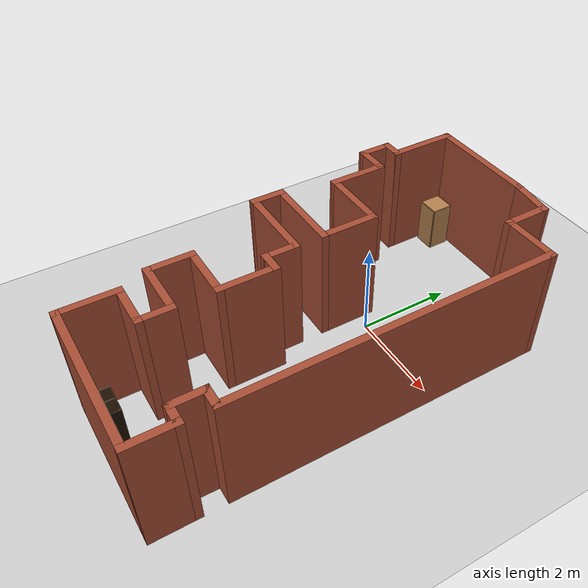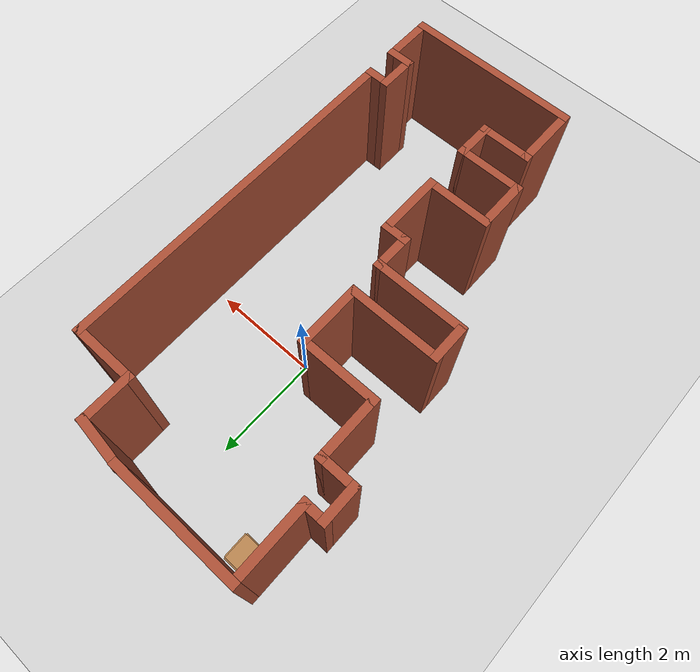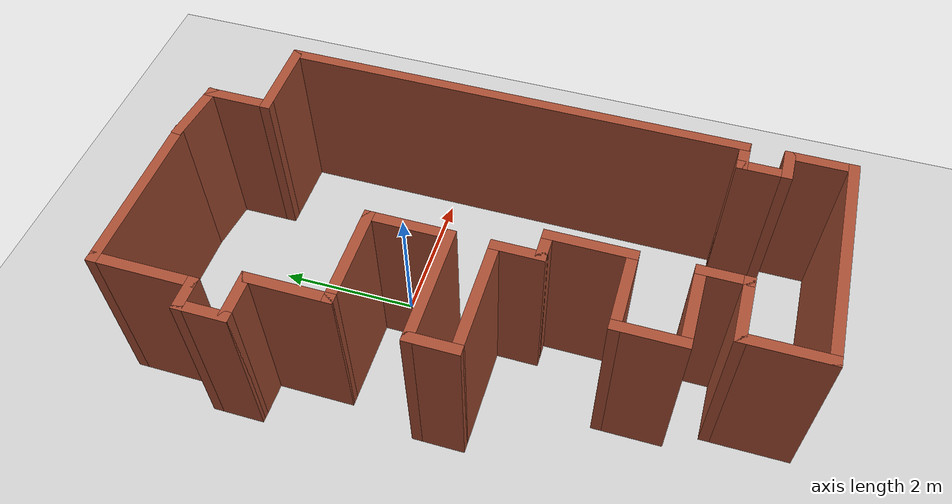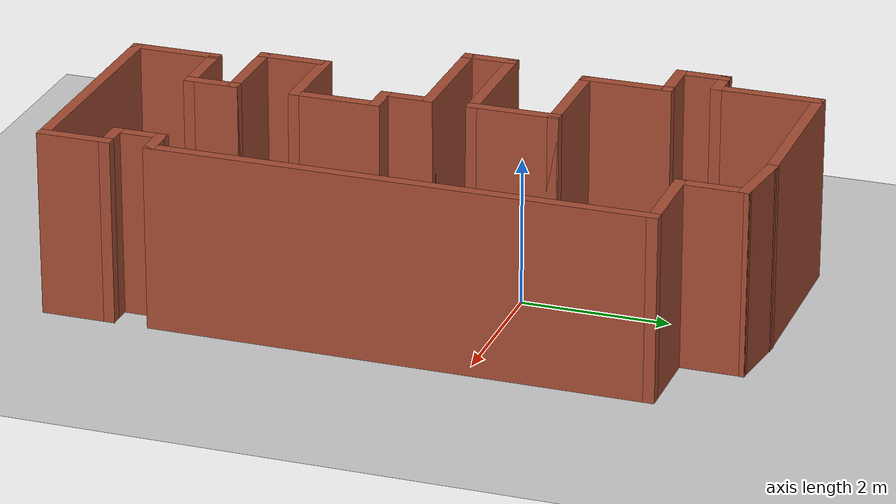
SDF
<sdf version="1.6">
 <world name="default">
  <light name="sun" type="directional">
   <pose>0 0 10 0 -0 0</pose>
   <diffuse>0.8 0.8 0.8 1</diffuse>
   <specular>0.2 0.2 0.2 1</specular>
   <attenuation>
    <range>1000</range>
    <constant>0.9</constant>
    <linear>0.01</linear>
    <quadratic>0.001</quadratic>
   </attenuation>
   <direction>-0.5 0.1 -0.9</direction>
  </light>
  <model name="ground_plane">
   <static>1</static>
   <link name="link">
    <collision name="collision">
     <geometry><plane><normal>0 0 1</normal><size>100 100</size></plane></geometry>
     <surface>
      <contact><collide_bitmask>65535</collide_bitmask></contact>
      <friction><ode><mu>100</mu><mu2>50</mu2></ode></friction>
     </surface>
    </collision>
    <visual name="visual">
     <cast_shadows>0</cast_shadows>
     <geometry><plane><normal>0 0 1</normal><size>100 100</size></plane></geometry>
     <material>
      <script><uri>file://media/materials/scripts/gazebo.material</uri><name>Gazebo/Grey</name></script>
     </material>
    </visual>
   </link>
  </model>
  <gravity>0 0 -9.8</gravity>
  <magnetic_field>6e-06 2.3e-05 -4.2e-05</magnetic_field>
  <atmosphere type="adiabatic"/>
  <physics name="default_physics" default="0" type="ode">
   <max_step_size>0.001</max_step_size>
   <real_time_factor>1</real_time_factor>
   <real_time_update_rate>1000</real_time_update_rate>
  </physics>
  <scene><ambient>0.4 0.4 0.4 1</ambient><background>0.7 0.7 0.7 1</background><shadows>1</shadows></scene>
  <audio><device>default</device></audio>
  <spherical_coordinates>
   <surface_model>EARTH_WGS84</surface_model>
   <latitude_deg>0</latitude_deg>
   <longitude_deg>0</longitude_deg>
   <elevation>0</elevation>
   <heading_deg>0</heading_deg>
  </spherical_coordinates>
  <model name="map_68">
   <pose>-0.058213 -1.14192 0 0 -0 0</pose>
   <link name="Wall_10">
    <collision name="Wall_10_Collision">
     <geometry><box><size>1.5 0.15 2.5</size></box></geometry>
     <pose>0 0 1.25 0 -0 0</pose>
    </collision>
    <visual name="Wall_10_Visual">
     <pose>0 0 1.25 0 -0 0</pose>
     <geometry><box><size>1.5 0.15 2.5</size></box></geometry>
     <material>
      <script><uri>file://media/materials/scripts/gazebo.material</uri><name>Gazebo/Bricks</name></script>
      <ambient>1 1 1 1</ambient>
     </material>
     <meta><layer>0</layer></meta>
    </visual>
    <pose>-1 1.44569 0 0 -0 0</pose>
   </link>
   <link name="Wall_11">
    <collision name="Wall_11_Collision">
     <geometry><box><size>1.25 0.15 2.5</size></box></geometry>
     <pose>0 0 1.25 0 -0 0</pose>
    </collision>
    <visual name="Wall_11_Visual">
     <pose>0 0 1.25 0 -0 0</pose>
     <geometry><box><size>1.25 0.15 2.5</size></box></geometry>
     <material>
      <script><uri>file://media/materials/scripts/gazebo.material</uri><name>Gazebo/Bricks</name></script>
      <ambient>1 1 1 1</ambient>
     </material>
     <meta><layer>0</layer></meta>
    </visual>
    <pose>-0.325 0.895693 0 0 -0 -1.5708</pose>
   </link>
   <link name="Wall_12">
    <collision name="Wall_12_Collision">
     <geometry><box><size>1.75 0.15 2.5</size></box></geometry>
     <pose>0 0 1.25 0 -0 0</pose>
    </collision>
    <visual name="Wall_12_Visual">
     <pose>0 0 1.25 0 -0 0</pose>
     <geometry><box><size>1.75 0.15 2.5</size></box></geometry>
     <material>
      <script><uri>file://media/materials/scripts/gazebo.material</uri><name>Gazebo/Bricks</name></script>
      <ambient>1 1 1 1</ambient>
     </material>
     <meta><layer>0</layer></meta>
    </visual>
    <pose>-1.125 0.345693 0 0 -0 3.14159</pose>
   </link>
   <link name="Wall_13">
    <collision name="Wall_13_Collision">
     <geometry><box><size>0.75 0.15 2.5</size></box></geometry>
     <pose>0 0 1.25 0 -0 0</pose>
    </collision>
    <visual name="Wall_13_Visual">
     <pose>0 0 1.25 0 -0 0</pose>
     <geometry><box><size>0.75 0.15 2.5</size></box></geometry>
     <material>
      <script><uri>file://media/materials/scripts/gazebo.material</uri><name>Gazebo/Bricks</name></script>
      <ambient>1 1 1 1</ambient>
     </material>
     <meta><layer>0</layer></meta>
    </visual>
    <pose>-1.925 0.045693 0 0 -0 -1.5708</pose>
   </link>
   <link name="Wall_14">
    <collision name="Wall_14_Collision">
     <geometry><box><size>1.75 0.15 2.5</size></box></geometry>
     <pose>0 0 1.25 0 -0 0</pose>
    </collision>
    <visual name="Wall_14_Visual">
     <pose>0 0 1.25 0 -0 0</pose>
     <geometry><box><size>1.75 0.15 2.5</size></box></geometry>
     <material>
      <script><uri>file://media/materials/scripts/gazebo.material</uri><name>Gazebo/Bricks</name></script>
      <ambient>1 1 1 1</ambient>
     </material>
     <meta><layer>0</layer></meta>
    </visual>
    <pose>-1.125 -0.254307 0 0 -0 0</pose>
   </link>
   <link name="Wall_15">
    <collision name="Wall_15_Collision">
     <geometry><box><size>0.75 0.15 2.5</size></box></geometry>
     <pose>0 0 1.25 0 -0 0</pose>
    </collision>
    <visual name="Wall_15_Visual">
     <pose>0 0 1.25 0 -0 0</pose>
     <geometry><box><size>0.75 0.15 2.5</size></box></geometry>
     <material>
      <script><uri>file://media/materials/scripts/gazebo.material</uri><name>Gazebo/Bricks</name></script>
      <ambient>1 1 1 1</ambient>
     </material>
     <meta><layer>0</layer></meta>
    </visual>
    <pose>-0.325 -0.554307 0 0 -0 -1.5708</pose>
   </link>
   <link name="Wall_16">
    <collision name="Wall_16_Collision">
     <geometry><box><size>0.5 0.15 2.5</size></box></geometry>
     <pose>0 0 1.25 0 -0 0</pose>
    </collision>
    <visual name="Wall_16_Visual">
     <pose>0 0 1.25 0 -0 0</pose>
     <geometry><box><size>0.5 0.15 2.5</size></box></geometry>
     <material>
      <script><uri>file://media/materials/scripts/gazebo.material</uri><name>Gazebo/Bricks</name></script>
      <ambient>1 1 1 1</ambient>
     </material>
     <meta><layer>0</layer></meta>
    </visual>
    <pose>-0.15 -0.854307 0 0 -0 0</pose>
   </link>
   <link name="Wall_17">
    <collision name="Wall_17_Collision">
     <geometry><box><size>1.25 0.15 2.5</size></box></geometry>
     <pose>0 0 1.25 0 -0 0</pose>
    </collision>
    <visual name="Wall_17_Visual">
     <pose>0 0 1.25 0 -0 0</pose>
     <geometry><box><size>1.25 0.15 2.5</size></box></geometry>
     <material>
      <script><uri>file://media/materials/scripts/gazebo.material</uri><name>Gazebo/Bricks</name></script>
      <ambient>1 1 1 1</ambient>
     </material>
     <meta><layer>0</layer></meta>
    </visual>
    <pose>0.025 -1.40431 0 0 -0 -1.5708</pose>
   </link>
   <link name="Wall_18">
    <collision name="Wall_18_Collision">
     <geometry><box><size>1.25 0.15 2.5</size></box></geometry>
     <pose>0 0 1.25 0 -0 0</pose>
    </collision>
    <visual name="Wall_18_Visual">
     <pose>0 0 1.25 0 -0 0</pose>
     <geometry><box><size>1.25 0.15 2.5</size></box></geometry>
     <material>
      <script><uri>file://media/materials/scripts/gazebo.material</uri><name>Gazebo/Bricks</name></script>
      <ambient>1 1 1 1</ambient>
     </material>
     <meta><layer>0</layer></meta>
    </visual>
    <pose>-0.525 -1.95431 0 0 -0 3.14159</pose>
   </link>
   <link name="Wall_19">
    <collision name="Wall_19_Collision">
     <geometry><box><size>1 0.15 2.5</size></box></geometry>
     <pose>0 0 1.25 0 -0 0</pose>
    </collision>
    <visual name="Wall_19_Visual">
     <pose>0 0 1.25 0 -0 0</pose>
     <geometry><box><size>1 0.15 2.5</size></box></geometry>
     <material>
      <script><uri>file://media/materials/scripts/gazebo.material</uri><name>Gazebo/Bricks</name></script>
      <ambient>1 1 1 1</ambient>
     </material>
     <meta><layer>0</layer></meta>
    </visual>
    <pose>-1.075 -2.37931 0 0 -0 -1.5708</pose>
   </link>
   <link name="Wall_2">
    <collision name="Wall_2_Collision">
     <geometry><box><size>2.43882 0.15 2.5</size></box></geometry>
     <pose>0 0 1.25 0 -0 0</pose>
    </collision>
    <visual name="Wall_2_Visual">
     <pose>0 0 1.25 0 -0 0</pose>
     <geometry><box><size>2.43882 0.15 2.5</size></box></geometry>
     <material>
      <script><uri>file://media/materials/scripts/gazebo.material</uri><name>Gazebo/Bricks</name></script>
      <ambient>1 1 1 1</ambient>
     </material>
     <meta><layer>0</layer></meta>
    </visual>
    <pose>-0.78059 4.49569 0 0 -0 3.14159</pose>
   </link>
   <link name="Wall_20">
    <collision name="Wall_20_Collision">
     <geometry><box><size>1.25 0.15 2.5</size></box></geometry>
     <pose>0 0 1.25 0 -0 0</pose>
    </collision>
    <visual name="Wall_20_Visual">
     <pose>0 0 1.25 0 -0 0</pose>
     <geometry><box><size>1.25 0.15 2.5</size></box></geometry>
     <material>
      <script><uri>file://media/materials/scripts/gazebo.material</uri><name>Gazebo/Bricks</name></script>
      <ambient>1 1 1 1</ambient>
     </material>
     <meta><layer>0</layer></meta>
    </visual>
    <pose>-0.525 -2.80431 0 0 -0 0</pose>
   </link>
   <link name="Wall_21">
    <collision name="Wall_21_Collision">
     <geometry><box><size>0.75 0.15 2.5</size></box></geometry>
     <pose>0 0 1.25 0 -0 0</pose>
    </collision>
    <visual name="Wall_21_Visual">
     <pose>0 0 1.25 0 -0 0</pose>
     <geometry><box><size>0.75 0.15 2.5</size></box></geometry>
     <material>
      <script><uri>file://media/materials/scripts/gazebo.material</uri><name>Gazebo/Bricks</name></script>
      <ambient>1 1 1 1</ambient>
     </material>
     <meta><layer>0</layer></meta>
    </visual>
    <pose>0.025 -3.10431 0 0 -0 -1.5708</pose>
   </link>
   <link name="Wall_22">
    <collision name="Wall_22_Collision">
     <geometry><box><size>1 0.15 2.5</size></box></geometry>
     <pose>0 0 1.25 0 -0 0</pose>
    </collision>
    <visual name="Wall_22_Visual">
     <pose>0 0 1.25 0 -0 0</pose>
     <geometry><box><size>1 0.15 2.5</size></box></geometry>
     <material>
      <script><uri>file://media/materials/scripts/gazebo.material</uri><name>Gazebo/Bricks</name></script>
      <ambient>1 1 1 1</ambient>
     </material>
     <meta><layer>0</layer></meta>
    </visual>
    <pose>-0.4 -3.40431 0 0 -0 3.14159</pose>
   </link>
   <link name="Wall_23">
    <collision name="Wall_23_Collision">
     <geometry><box><size>1.25 0.15 2.5</size></box></geometry>
     <pose>0 0 1.25 0 -0 0</pose>
    </collision>
    <visual name="Wall_23_Visual">
     <pose>0 0 1.25 0 -0 0</pose>
     <geometry><box><size>1.25 0.15 2.5</size></box></geometry>
     <material>
      <script><uri>file://media/materials/scripts/gazebo.material</uri><name>Gazebo/Bricks</name></script>
      <ambient>1 1 1 1</ambient>
     </material>
     <meta><layer>0</layer></meta>
    </visual>
    <pose>-0.825 -3.95431 0 0 -0 -1.5708</pose>
   </link>
   <link name="Wall_3">
    <collision name="Wall_3_Collision">
     <geometry><box><size>1.5 0.15 2.5</size></box></geometry>
     <pose>0 0 1.25 0 -0 0</pose>
    </collision>
    <visual name="Wall_3_Visual">
     <pose>0 0 1.25 0 -0 0</pose>
     <geometry><box><size>1.5 0.15 2.5</size></box></geometry>
     <material>
      <script><uri>file://media/materials/scripts/gazebo.material</uri><name>Gazebo/Bricks</name></script>
      <ambient>1 1 1 1</ambient>
     </material>
     <meta><layer>0</layer></meta>
    </visual>
    <pose>-1.925 3.82069 0 0 -0 -1.5708</pose>
   </link>
   <link name="Wall_4">
    <collision name="Wall_4_Collision">
     <geometry><box><size>0.5 0.15 2.5</size></box></geometry>
     <pose>0 0 1.25 0 -0 0</pose>
    </collision>
    <visual name="Wall_4_Visual">
     <pose>0 0 1.25 0 -0 0</pose>
     <geometry><box><size>0.5 0.15 2.5</size></box></geometry>
     <material>
      <script><uri>file://media/materials/scripts/gazebo.material</uri><name>Gazebo/Bricks</name></script>
      <ambient>1 1 1 1</ambient>
     </material>
     <meta><layer>0</layer></meta>
    </visual>
    <pose>-2.1 3.14569 0 0 -0 3.14159</pose>
   </link>
   <link name="Wall_48">
    <collision name="Wall_48_Collision">
     <geometry><box><size>3.25 0.15 2.5</size></box></geometry>
     <pose>0 0 1.25 0 -0 0</pose>
    </collision>
    <visual name="Wall_48_Visual">
     <pose>0 0 1.25 0 -0 0</pose>
     <geometry><box><size>3.25 0.15 2.5</size></box></geometry>
     <material>
      <script><uri>file://media/materials/scripts/gazebo.material</uri><name>Gazebo/Bricks</name></script>
      <ambient>1 1 1 1</ambient>
     </material>
     <meta><layer>0</layer></meta>
    </visual>
    <pose>0.725 -4.50431 0 0 -0 0</pose>
   </link>
   <link name="Wall_49">
    <collision name="Wall_49_Collision">
     <geometry><box><size>1 0.15 2.5</size></box></geometry>
     <pose>0 0 1.25 0 -0 0</pose>
    </collision>
    <visual name="Wall_49_Visual">
     <pose>0 0 1.25 0 -0 0</pose>
     <geometry><box><size>1 0.15 2.5</size></box></geometry>
     <material>
      <script><uri>file://media/materials/scripts/gazebo.material</uri><name>Gazebo/Bricks</name></script>
      <ambient>1 1 1 1</ambient>
     </material>
     <meta><layer>0</layer></meta>
    </visual>
    <pose>2.275 -4.07931 0 0 -0 1.5708</pose>
   </link>
   <link name="Wall_5">
    <collision name="Wall_5_Collision">
     <geometry><box><size>0.75 0.15 2.5</size></box></geometry>
     <pose>0 0 1.25 0 -0 0</pose>
    </collision>
    <visual name="Wall_5_Visual">
     <pose>0 0 1.25 0 -0 0</pose>
     <geometry><box><size>0.75 0.15 2.5</size></box></geometry>
     <material>
      <script><uri>file://media/materials/scripts/gazebo.material</uri><name>Gazebo/Bricks</name></script>
      <ambient>1 1 1 1</ambient>
     </material>
     <meta><layer>0</layer></meta>
    </visual>
    <pose>-2.275 2.84569 0 0 -0 -1.5708</pose>
   </link>
   <link name="Wall_50">
    <collision name="Wall_50_Collision">
     <geometry><box><size>0.5 0.15 2.5</size></box></geometry>
     <pose>0 0 1.25 0 -0 0</pose>
    </collision>
    <visual name="Wall_50_Visual">
     <pose>0 0 1.25 0 -0 0</pose>
     <geometry><box><size>0.5 0.15 2.5</size></box></geometry>
     <material>
      <script><uri>file://media/materials/scripts/gazebo.material</uri><name>Gazebo/Bricks</name></script>
      <ambient>1 1 1 1</ambient>
     </material>
     <meta><layer>0</layer></meta>
    </visual>
    <pose>2.1 -3.65431 0 0 -0 3.14159</pose>
   </link>
   <link name="Wall_51">
    <collision name="Wall_51_Collision">
     <geometry><box><size>0.75 0.15 2.5</size></box></geometry>
     <pose>0 0 1.25 0 -0 0</pose>
    </collision>
    <visual name="Wall_51_Visual">
     <pose>0 0 1.25 0 -0 0</pose>
     <geometry><box><size>0.75 0.15 2.5</size></box></geometry>
     <material>
      <script><uri>file://media/materials/scripts/gazebo.material</uri><name>Gazebo/Bricks</name></script>
      <ambient>1 1 1 1</ambient>
     </material>
     <meta><layer>0</layer></meta>
    </visual>
    <pose>1.925 -3.35431 0 0 -0 1.5708</pose>
   </link>
   <link name="Wall_52">
    <collision name="Wall_52_Collision">
     <geometry><box><size>0.5 0.15 2.5</size></box></geometry>
     <pose>0 0 1.25 0 -0 0</pose>
    </collision>
    <visual name="Wall_52_Visual">
     <pose>0 0 1.25 0 -0 0</pose>
     <geometry><box><size>0.5 0.15 2.5</size></box></geometry>
     <material>
      <script><uri>file://media/materials/scripts/gazebo.material</uri><name>Gazebo/Bricks</name></script>
      <ambient>1 1 1 1</ambient>
     </material>
     <meta><layer>0</layer></meta>
    </visual>
    <pose>2.1 -3.05431 0 0 -0 0</pose>
   </link>
   <link name="Wall_53">
    <collision name="Wall_53_Collision">
     <geometry><box><size>6.75 0.15 2.5</size></box></geometry>
     <pose>0 0 1.25 0 -0 0</pose>
    </collision>
    <visual name="Wall_53_Visual">
     <pose>0 0 1.25 0 -0 0</pose>
     <geometry><box><size>6.75 0.15 2.5</size></box></geometry>
     <material>
      <script><uri>file://media/materials/scripts/gazebo.material</uri><name>Gazebo/Bricks</name></script>
      <ambient>1 1 1 1</ambient>
     </material>
     <meta><layer>0</layer></meta>
    </visual>
    <pose>2.275 0.245693 0 0 -0 1.5708</pose>
   </link>
   <link name="Wall_54">
    <collision name="Wall_54_Collision">
     <geometry><box><size>1.25 0.15 2.5</size></box></geometry>
     <pose>0 0 1.25 0 -0 0</pose>
    </collision>
    <visual name="Wall_54_Visual">
     <pose>0 0 1.25 0 -0 0</pose>
     <geometry><box><size>1.25 0.15 2.5</size></box></geometry>
     <material>
      <script><uri>file://media/materials/scripts/gazebo.material</uri><name>Gazebo/Bricks</name></script>
      <ambient>1 1 1 1</ambient>
     </material>
     <meta><layer>0</layer></meta>
    </visual>
    <pose>1.725 3.54569 0 0 -0 3.14159</pose>
   </link>
   <link name="Wall_57">
    <collision name="Wall_57_Collision">
     <geometry><box><size>1 0.15 2.5</size></box></geometry>
     <pose>0 0 1.25 0 -0 0</pose>
    </collision>
    <visual name="Wall_57_Visual">
     <pose>0 0 1.25 0 -0 0</pose>
     <geometry><box><size>1 0.15 2.5</size></box></geometry>
     <material>
      <script><uri>file://media/materials/scripts/gazebo.material</uri><name>Gazebo/Bricks</name></script>
      <ambient>1 1 1 1</ambient>
     </material>
     <meta><layer>0</layer></meta>
    </visual>
    <pose>1.175 3.97069 0 0 -0 1.5708</pose>
   </link>
   <link name="Wall_58">
    <collision name="Wall_58_Collision">
     <geometry><box><size>0.967321 0.15 2.5</size></box></geometry>
     <pose>0 0 1.25 0 -0 0</pose>
    </collision>
    <visual name="Wall_58_Visual">
     <pose>0 0 1.25 0 -0 0</pose>
     <geometry><box><size>0.967321 0.15 2.5</size></box></geometry>
     <material>
      <script><uri>file://media/materials/scripts/gazebo.material</uri><name>Gazebo/Bricks</name></script>
      <ambient>1 1 1 1</ambient>
     </material>
     <meta><layer>0</layer></meta>
    </visual>
    <pose>0.76941 4.44569 0 0 -0 3.01893</pose>
   </link>
   <link name="Wall_6">
    <collision name="Wall_6_Collision">
     <geometry><box><size>0.75 0.15 2.5</size></box></geometry>
     <pose>0 0 1.25 0 -0 0</pose>
    </collision>
    <visual name="Wall_6_Visual">
     <pose>0 0 1.25 0 -0 0</pose>
     <geometry><box><size>0.75 0.15 2.5</size></box></geometry>
     <material>
      <script><uri>file://media/materials/scripts/gazebo.material</uri><name>Gazebo/Bricks</name></script>
      <ambient>1 1 1 1</ambient>
     </material>
     <meta><layer>0</layer></meta>
    </visual>
    <pose>-1.975 2.54569 0 0 -0 0</pose>
   </link>
   <link name="Wall_9">
    <collision name="Wall_9_Collision">
     <geometry><box><size>1.25 0.15 2.5</size></box></geometry>
     <pose>0 0 1.25 0 -0 0</pose>
    </collision>
    <visual name="Wall_9_Visual">
     <pose>0 0 1.25 0 -0 0</pose>
     <geometry><box><size>1.25 0.15 2.5</size></box></geometry>
     <material>
      <script><uri>file://media/materials/scripts/gazebo.material</uri><name>Gazebo/Bricks</name></script>
      <ambient>1 1 1 1</ambient>
     </material>
     <meta><layer>0</layer></meta>
    </visual>
    <pose>-1.675 1.99569 0 0 -0 -1.5708</pose>
   </link>
   <static>1</static>
  </model>
  <model name="6_Cube_StorageE">
   <link name="Wall_0">
    <pose>0 0 0.01 0 -0 0</pose>
    <inertial>
     <mass>1.6201</mass>
     <inertia><ixx>0.0119</ixx><iyy>0.0631</iyy><izz>0.0513</izz><ixy>0</ixy><ixz>0</ixz><iyz>0</iyz></inertia>
    </inertial>
    <collision name="Wall_0_Collision"><geometry><box><size>0.616 0.296 0.02</size></box></geometry></collision>
    <visual name="Wall_0_Visual">
     <geometry><box><size>0.616 0.296 0.02</size></box></geometry>
     <material>
      <script><uri>file://media/materials/scripts/gazebo.material</uri><name>Gazebo/Grey</name></script>
      <ambient>0.105882 0.0509804 0 1</ambient>
     </material>
    </visual>
   </link>
   <joint name="0_2" type="fixed">
    <pose>-0.308 0 0 0 -0 0</pose>
    <parent>Wall_2</parent>
    <child>Wall_0</child>
    <axis>
     <xyz>1 0 0</xyz>
     <use_parent_model_frame>0</use_parent_model_frame>
     <limit><lower>-1e+16</lower><upper>1e+16</upper></limit>
    </axis>
   </joint>
   <joint name="0_12" type="fixed">
    <parent>Wall_12</parent>
    <child>Wall_0</child>
    <axis>
     <xyz>0 0 1</xyz>
     <use_parent_model_frame>0</use_parent_model_frame>
     <limit><lower>-1e+16</lower><upper>1e+16</upper></limit>
    </axis>
   </joint>
   <joint name="0_4" type="fixed">
    <pose>0.308 0 0 0 -0 0</pose>
    <parent>Wall_4</parent>
    <child>Wall_0</child>
    <axis>
     <xyz>1 0 0</xyz>
     <use_parent_model_frame>0</use_parent_model_frame>
     <limit><lower>-1e+16</lower><upper>1e+16</upper></limit>
    </axis>
   </joint>
   <link name="Wall_10">
    <pose>0 0 0.61 0 -0 0</pose>
    <inertial>
     <mass>1.6201</mass>
     <inertia><ixx>0.0119</ixx><iyy>0.0631</iyy><izz>0.0513</izz><ixy>0</ixy><ixz>0</ixz><iyz>0</iyz></inertia>
    </inertial>
    <collision name="Wall_10_Collision"><geometry><box><size>0.616 0.296 0.02</size></box></geometry></collision>
    <visual name="Wall_10_Visual">
     <geometry><box><size>0.616 0.296 0.02</size></box></geometry>
     <material>
      <script><uri>file://media/materials/scripts/gazebo.material</uri><name>Gazebo/Grey</name></script>
      <ambient>0.105882 0.0509804 0 1</ambient>
     </material>
    </visual>
   </link>
   <joint name="10_2" type="fixed">
    <pose>-0.308 0 0 0 -0 0</pose>
    <parent>Wall_2</parent>
    <child>Wall_10</child>
    <axis>
     <xyz>1 0 0</xyz>
     <use_parent_model_frame>0</use_parent_model_frame>
     <limit><lower>-1e+16</lower><upper>1e+16</upper></limit>
    </axis>
   </joint>
   <joint name="10_12" type="fixed">
    <parent>Wall_12</parent>
    <child>Wall_10</child>
    <axis>
     <xyz>0 0 1</xyz>
     <use_parent_model_frame>0</use_parent_model_frame>
     <limit><lower>-1e+16</lower><upper>1e+16</upper></limit>
    </axis>
   </joint>
   <joint name="10_4" type="fixed">
    <pose>0.308 0 0 0 -0 0</pose>
    <parent>Wall_4</parent>
    <child>Wall_10</child>
    <axis>
     <xyz>1 0 0</xyz>
     <use_parent_model_frame>0</use_parent_model_frame>
     <limit><lower>-1e+16</lower><upper>1e+16</upper></limit>
    </axis>
   </joint>
   <link name="Wall_12">
    <pose>0 0 0.4575 0 -0 0</pose>
    <inertial>
     <mass>2.4065</mass>
     <inertia><ixx>0.0177</ixx><iyy>0.1855</iyy><izz>0.168</izz><ixy>0</ixy><ixz>0</ixz><iyz>0</iyz></inertia>
    </inertial>
    <collision name="Wall_12_Collision"><geometry><box><size>0.02 0.296 0.915</size></box></geometry></collision>
    <visual name="Wall_12_Visual">
     <geometry><box><size>0.02 0.296 0.915</size></box></geometry>
     <material>
      <script><uri>file://media/materials/scripts/gazebo.material</uri><name>Gazebo/Grey</name></script>
      <ambient>0.105882 0.0509804 0 1</ambient>
     </material>
    </visual>
   </link>
   <link name="Wall_2">
    <pose>-0.298 0 0.4575 0 -0 0</pose>
    <inertial>
     <mass>2.4065</mass>
     <inertia><ixx>0.0177</ixx><iyy>0.1855</iyy><izz>0.168</izz><ixy>0</ixy><ixz>0</ixz><iyz>0</iyz></inertia>
    </inertial>
    <collision name="Wall_2_Collision"><geometry><box><size>0.02 0.296 0.915</size></box></geometry></collision>
    <visual name="Wall_2_Visual">
     <geometry><box><size>0.02 0.296 0.915</size></box></geometry>
     <material>
      <script><uri>file://media/materials/scripts/gazebo.material</uri><name>Gazebo/Grey</name></script>
      <ambient>0.105882 0.0509804 0 1</ambient>
     </material>
    </visual>
   </link>
   <link name="Wall_4">
    <pose>0.298 0 0.4575 0 -0 0</pose>
    <inertial>
     <mass>2.4065</mass>
     <inertia><ixx>0.0177</ixx><iyy>0.1855</iyy><izz>0.168</izz><ixy>0</ixy><ixz>0</ixz><iyz>0</iyz></inertia>
    </inertial>
    <collision name="Wall_4_Collision"><geometry><box><size>0.02 0.296 0.915</size></box></geometry></collision>
    <visual name="Wall_4_Visual">
     <geometry><box><size>0.02 0.296 0.915</size></box></geometry>
     <material>
      <script><uri>file://media/materials/scripts/gazebo.material</uri><name>Gazebo/Grey</name></script>
      <ambient>0.105882 0.0509804 0 1</ambient>
     </material>
    </visual>
   </link>
   <link name="Wall_6">
    <pose>0 0 0.905 0 -0 0</pose>
    <inertial>
     <mass>1.6201</mass>
     <inertia><ixx>0.0119</ixx><iyy>0.0631</iyy><izz>0.0513</izz><ixy>0</ixy><ixz>0</ixz><iyz>0</iyz></inertia>
    </inertial>
    <collision name="Wall_6_Collision"><geometry><box><size>0.616 0.296 0.02</size></box></geometry></collision>
    <visual name="Wall_6_Visual">
     <geometry><box><size>0.616 0.296 0.02</size></box></geometry>
     <material>
      <script><uri>file://media/materials/scripts/gazebo.material</uri><name>Gazebo/Grey</name></script>
      <ambient>0.105882 0.0509804 0 1</ambient>
     </material>
    </visual>
   </link>
   <joint name="6_2" type="fixed">
    <pose>-0.308 0 0 0 -0 0</pose>
    <parent>Wall_2</parent>
    <child>Wall_6</child>
    <axis>
     <xyz>2 0 0</xyz>
     <use_parent_model_frame>0</use_parent_model_frame>
     <limit><lower>-1e+16</lower><upper>1e+16</upper></limit>
    </axis>
   </joint>
   <joint name="6_12" type="fixed">
    <parent>Wall_12</parent>
    <child>Wall_6</child>
    <axis>
     <xyz>0 0 1</xyz>
     <use_parent_model_frame>0</use_parent_model_frame>
     <limit><lower>-1e+16</lower><upper>1e+16</upper></limit>
    </axis>
   </joint>
   <joint name="6_4" type="fixed">
    <pose>0.308 0 0 0 -0 0</pose>
    <parent>Wall_4</parent>
    <child>Wall_6</child>
    <axis>
     <xyz>1 0 0</xyz>
     <use_parent_model_frame>0</use_parent_model_frame>
     <limit><lower>-1e+16</lower><upper>1e+16</upper></limit>
    </axis>
   </joint>
   <link name="Wall_8">
    <pose>0 0 0.305 0 -0 0</pose>
    <inertial>
     <mass>1.6201</mass>
     <inertia><ixx>0.0119</ixx><iyy>0.0631</iyy><izz>0.0513</izz><ixy>0</ixy><ixz>0</ixz><iyz>0</iyz></inertia>
    </inertial>
    <collision name="Wall_8_Collision"><geometry><box><size>0.616 0.296 0.02</size></box></geometry></collision>
    <visual name="Wall_8_Visual">
     <geometry><box><size>0.616 0.296 0.02</size></box></geometry>
     <material>
      <script><uri>file://media/materials/scripts/gazebo.material</uri><name>Gazebo/Grey</name></script>
      <ambient>0.105882 0.0509804 0 1</ambient>
     </material>
    </visual>
   </link>
   <joint name="8_2" type="fixed">
    <pose>-0.308 0 0 0 -0 0</pose>
    <parent>Wall_2</parent>
    <child>Wall_8</child>
    <axis>
     <xyz>1 0 0</xyz>
     <use_parent_model_frame>0</use_parent_model_frame>
     <limit><lower>-1e+16</lower><upper>1e+16</upper></limit>
    </axis>
   </joint>
   <joint name="8_12" type="fixed">
    <parent>Wall_12</parent>
    <child>Wall_8</child>
    <axis>
     <xyz>0 0 1</xyz>
     <use_parent_model_frame>0</use_parent_model_frame>
     <limit><lower>-1e+16</lower><upper>1e+16</upper></limit>
    </axis>
   </joint>
   <joint name="8_4" type="fixed">
    <pose>0.308 0 0 0 -0 0</pose>
    <parent>Wall_4</parent>
    <child>Wall_8</child>
    <axis>
     <xyz>1 0 0</xyz>
     <use_parent_model_frame>0</use_parent_model_frame>
     <limit><lower>-1e+16</lower><upper>1e+16</upper></limit>
    </axis>
   </joint>
   <static>1</static>
   <pose>-0.075224 -5.36197 0 0 -0 0</pose>
  </model>
  <model name="cabinet">
   <static>1</static>
   <link name="cabinet_bottom_plate">
    <inertial>
     <pose>0 0 -1 0 -0 0</pose>
     <inertia><ixx>2.05</ixx><ixy>0</ixy><ixz>0</ixz><iyy>2.05</iyy><iyz>0</iyz><izz>2.05</izz></inertia>
     <mass>25</mass>
    </inertial>
    <collision name="cabinet_bottom_plate_geom">
     <pose>0 0 0.01 0 -0 0</pose>
     <geometry><box><size>0.45 0.45 0.02</size></box></geometry>
    </collision>
    <visual name="cabinet_bottom_plate_geom_visual">
     <pose>0 0 0.01 0 -0 0</pose>
     <geometry><box><size>0.45 0.45 0.02</size></box></geometry>
     <material>
      <script><uri>file://media/materials/scripts/gazebo.material</uri><name>Gazebo/Wood</name></script>
     </material>
    </visual>
    <collision name="cabinet_bottom_plate_geom_cabinet_back_plate">
     <pose>0.235 0 0.51 0 -0 0</pose>
     <geometry><box><size>0.02 0.45 1.02</size></box></geometry>
    </collision>
    <visual name="cabinet_bottom_plate_geom_cabinet_back_plate_visual">
     <pose>0.235 0 0.51 0 -0 0</pose>
     <geometry><box><size>0.02 0.45 1.02</size></box></geometry>
     <material>
      <script><uri>file://media/materials/scripts/gazebo.material</uri><name>Gazebo/Wood</name></script>
     </material>
    </visual>
    <collision name="cabinet_bottom_plate_geom_cabinet_left_plate">
     <pose>0 0.235 0.51 0 -0 0</pose>
     <geometry><box><size>0.45 0.02 1.02</size></box></geometry>
    </collision>
    <visual name="cabinet_bottom_plate_geom_cabinet_left_plate_visual">
     <pose>0 0.235 0.51 0 -0 0</pose>
     <geometry><box><size>0.45 0.02 1.02</size></box></geometry>
     <material>
      <script><uri>file://media/materials/scripts/gazebo.material</uri><name>Gazebo/Wood</name></script>
     </material>
    </visual>
    <collision name="cabinet_bottom_plate_geom_cabinet_middle_plate">
     <pose>0 0 0.51 0 -0 0</pose>
     <geometry><box><size>0.45 0.45 0.02</size></box></geometry>
    </collision>
    <visual name="cabinet_bottom_plate_geom_cabinet_middle_plate_visual">
     <pose>0 0 0.51 0 -0 0</pose>
     <geometry><box><size>0.45 0.45 0.02</size></box></geometry>
     <material>
      <script><uri>file://media/materials/scripts/gazebo.material</uri><name>Gazebo/Wood</name></script>
     </material>
    </visual>
    <collision name="cabinet_bottom_plate_geom_cabinet_right_plate">
     <pose>0 -0.235 0.51 0 -0 0</pose>
     <geometry><box><size>0.45 0.02 1.02</size></box></geometry>
    </collision>
    <visual name="cabinet_bottom_plate_geom_cabinet_right_plate_visual">
     <pose>0 -0.235 0.51 0 -0 0</pose>
     <geometry><box><size>0.45 0.02 1.02</size></box></geometry>
     <material>
      <script><uri>file://media/materials/scripts/gazebo.material</uri><name>Gazebo/Wood</name></script>
     </material>
    </visual>
    <collision name="cabinet_bottom_plate_geom_cabinet_top_plate">
     <pose>0 0 1.01 0 -0 0</pose>
     <geometry><box><size>0.45 0.45 0.02</size></box></geometry>
    </collision>
    <visual name="cabinet_bottom_plate_geom_cabinet_top_plate_visual">
     <pose>0 0 1.01 0 -0 0</pose>
     <geometry><box><size>0.45 0.45 0.02</size></box></geometry>
     <material>
      <script><uri>file://media/materials/scripts/gazebo.material</uri><name>Gazebo/Wood</name></script>
     </material>
    </visual>
   </link>
   <pose>-1.64337 2.99218 0 0 -0 0</pose>
  </model>
 </world>
</sdf>
